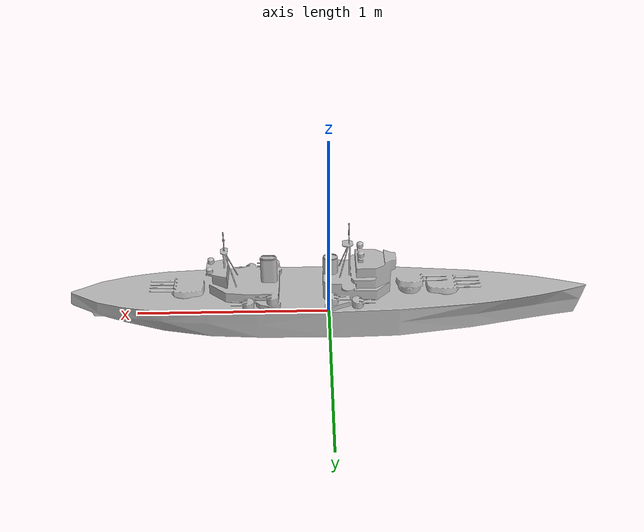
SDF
<?xml version="1.0" ?>
<sdf version="1.6">
  <model name="battleship">
    <pose>0 0 0 0 0 0</pose>

    <link name="body">
      <inertial>
        <pose>0 -0.12 0 0 0 0</pose>
        <mass>1.5</mass>
        <inertia>
          <ixx>0.083137104</ixx>
          <ixy>0</ixy>
          <iyy>0.387382402</iyy>
          <ixz>0</ixz>
          <iyz>0</iyz>
          <izz>0.469845106</izz>
        </inertia>
      </inertial>
      <visual name="visual">
        <geometry>
          <mesh>
            <uri>model://battleship/meshes/14083_WWII_ship_UK_King_George_V_Class_Battleship_v1_L1.dae</uri>
          </mesh>
        </geometry>
      </visual>
      <collision name="body_collision">
        <geometry>
          <mesh>
            <uri>model://battleship/meshes/14083_WWII_ship_UK_King_George_V_Class_Battleship_v1_L1.dae</uri>
          </mesh>
        </geometry>
      </collision>
      </link>
  </model>
</sdf>
